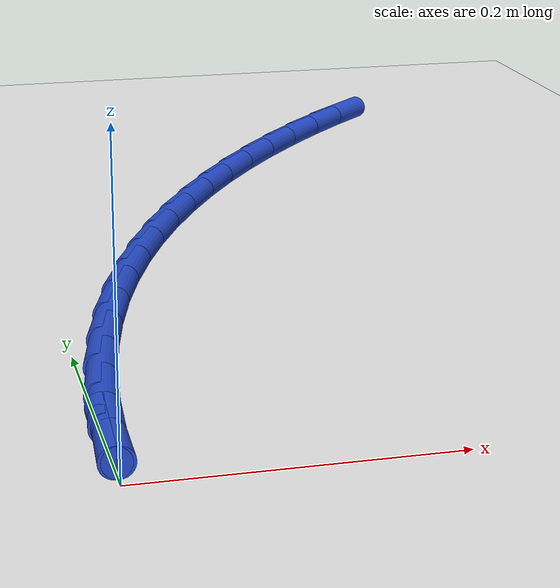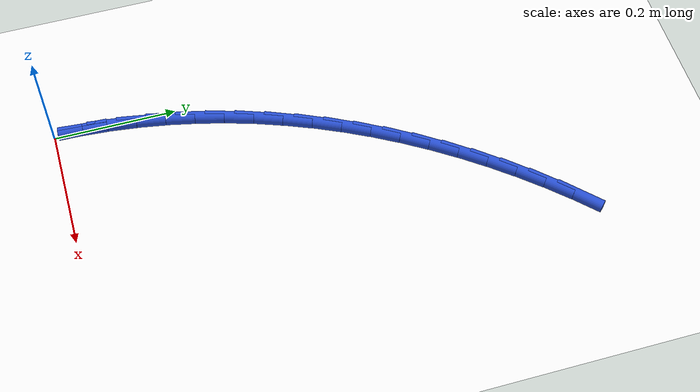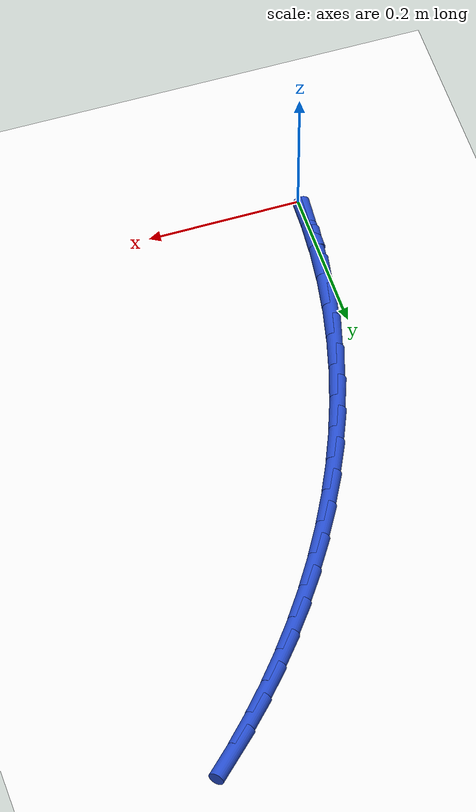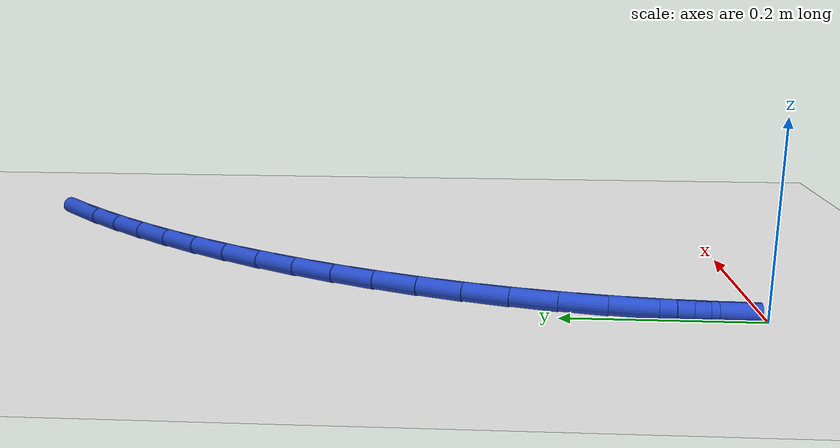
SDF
<sdf version="1.6">
 <world name="default">
  <model name="ground_plane">
   <static>1</static>
   <link name="link">
    <collision name="collision">
     <geometry><plane><normal>0 0 1</normal><size>100 100</size></plane></geometry>
     <surface><friction><ode><mu>100</mu><mu2>50</mu2></ode></friction></surface>
    </collision>
    <visual name="visual">
     <cast_shadows>0</cast_shadows>
     <geometry><plane><normal>0 0 1</normal><size>100 100</size></plane></geometry>
     <material>
      <script><uri>file://media/materials/scripts/gazebo.material</uri><name>Gazebo/WhiteGlow</name></script>
     </material>
    </visual>
   </link>
  </model>
  <model name="line">
   <link name="link_1">
    <pose>0.0013647095893725408 0.0475302462803473 0.01 0 1.57 1.4935176895903097</pose>
    <collision name="collision">
     <geometry><cylinder><radius>0.01</radius><length>0.08</length></cylinder></geometry>
    </collision>
    <visual name="visual">
     <material>
      <script><name>Gazebo/Blue</name><uri>file://media/materials/scripts/gazebo.material</uri></script>
     </material>
     <geometry><cylinder><radius>0.01</radius><length>0.08</length></cylinder></geometry>
    </visual>
   </link>
   <link name="link_2">
    <pose>0.0050424344761275395 0.09502591900114518 0.01 0 1.57 1.4459482668344668</pose>
    <collision name="collision">
     <geometry><cylinder><radius>0.01</radius><length>0.08</length></cylinder></geometry>
    </collision>
    <visual name="visual">
     <material>
      <script><name>Gazebo/Blue</name><uri>file://media/materials/scripts/gazebo.material</uri></script>
     </material>
     <geometry><cylinder><radius>0.01</radius><length>0.08</length></cylinder></geometry>
    </visual>
   </link>
   <link name="link_3">
    <pose>0.010987295502399708 0.1423950274382091 0.01 0 1.57 1.3993050739746997</pose>
    <collision name="collision">
     <geometry><cylinder><radius>0.01</radius><length>0.08</length></cylinder></geometry>
    </collision>
    <visual name="visual">
     <material>
      <script><name>Gazebo/Blue</name><uri>file://media/materials/scripts/gazebo.material</uri></script>
     </material>
     <geometry><cylinder><radius>0.01</radius><length>0.08</length></cylinder></geometry>
    </visual>
   </link>
   <link name="link_4">
    <pose>0.01915341351032378 0.18954558086735446 0.01 0 1.57 1.353498917485196</pose>
    <collision name="collision">
     <geometry><cylinder><radius>0.01</radius><length>0.08</length></cylinder></geometry>
    </collision>
    <visual name="visual">
     <material>
      <script><name>Gazebo/Blue</name><uri>file://media/materials/scripts/gazebo.material</uri></script>
     </material>
     <geometry><cylinder><radius>0.01</radius><length>0.08</length></cylinder></geometry>
    </visual>
   </link>
   <link name="link_5">
    <pose>0.029494909342034456 0.23638558856439665 0.01 0 1.57 1.3084322120844911</pose>
    <collision name="collision">
     <geometry><cylinder><radius>0.01</radius><length>0.08</length></cylinder></geometry>
    </collision>
    <visual name="visual">
     <material>
      <script><name>Gazebo/Blue</name><uri>file://media/materials/scripts/gazebo.material</uri></script>
     </material>
     <geometry><cylinder><radius>0.01</radius><length>0.08</length></cylinder></geometry>
    </visual>
   </link>
   <link name="link_6">
    <pose>0.041965903839666495 0.28282305980515127 0.01 0 1.57 1.2640010197266225</pose>
    <collision name="collision">
     <geometry><cylinder><radius>0.01</radius><length>0.08</length></cylinder></geometry>
    </collision>
    <visual name="visual">
     <material>
      <script><name>Gazebo/Blue</name><uri>file://media/materials/scripts/gazebo.material</uri></script>
     </material>
     <geometry><cylinder><radius>0.01</radius><length>0.08</length></cylinder></geometry>
    </visual>
   </link>
   <link name="link_7">
    <pose>0.056520517845354605 0.3287660038654336 0.01 0 1.57 1.2200967701889742</pose>
    <collision name="collision">
     <geometry><cylinder><radius>0.01</radius><length>0.08</length></cylinder></geometry>
    </collision>
    <visual name="visual">
     <material>
      <script><name>Gazebo/Blue</name><uri>file://media/materials/scripts/gazebo.material</uri></script>
     </material>
     <geometry><cylinder><radius>0.01</radius><length>0.08</length></cylinder></geometry>
    </visual>
   </link>
   <link name="link_8">
    <pose>0.0731128722012335 0.37412243002105905 0.01 0 1.57 1.1766103750817722</pose>
    <collision name="collision">
     <geometry><cylinder><radius>0.01</radius><length>0.08</length></cylinder></geometry>
    </collision>
    <visual name="visual">
     <material>
      <script><name>Gazebo/Blue</name><uri>file://media/materials/scripts/gazebo.material</uri></script>
     </material>
     <geometry><cylinder><radius>0.01</radius><length>0.08</length></cylinder></geometry>
    </visual>
   </link>
   <link name="link_9">
    <pose>0.09169698191835757 0.41880043032889613 0.01 0 1.57 1.1336944703138312</pose>
    <collision name="collision">
     <geometry><cylinder><radius>0.01</radius><length>0.08</length></cylinder></geometry>
    </collision>
    <visual name="visual">
     <material>
      <script><name>Gazebo/Blue</name><uri>file://media/materials/scripts/gazebo.material</uri></script>
     </material>
     <geometry><cylinder><radius>0.01</radius><length>0.08</length></cylinder></geometry>
    </visual>
   </link>
   <link name="link_10">
    <pose>0.1122164274541733 0.4627162587518477 0.01 0 1.57 1.091731364844603</pose>
    <collision name="collision">
     <geometry><cylinder><radius>0.01</radius><length>0.08</length></cylinder></geometry>
    </collision>
    <visual name="visual">
     <material>
      <script><name>Gazebo/Blue</name><uri>file://media/materials/scripts/gazebo.material</uri></script>
     </material>
     <geometry><cylinder><radius>0.01</radius><length>0.08</length></cylinder></geometry>
    </visual>
   </link>
   <link name="link_11">
    <pose>0.1345956882542499 0.5058011100610174 0.01 0 1.57 1.0506706397227428</pose>
    <collision name="collision">
     <geometry><cylinder><radius>0.01</radius><length>0.08</length></cylinder></geometry>
    </collision>
    <visual name="visual">
     <material>
      <script><name>Gazebo/Blue</name><uri>file://media/materials/scripts/gazebo.material</uri></script>
     </material>
     <geometry><cylinder><radius>0.01</radius><length>0.08</length></cylinder></geometry>
    </visual>
   </link>
   <link name="link_12">
    <pose>0.1587572034086069 0.5479877749932688 0.01 0 1.57 1.0104036781939865</pose>
    <collision name="collision">
     <geometry><cylinder><radius>0.01</radius><length>0.08</length></cylinder></geometry>
    </collision>
    <visual name="visual">
     <material>
      <script><name>Gazebo/Blue</name><uri>file://media/materials/scripts/gazebo.material</uri></script>
     </material>
     <geometry><cylinder><radius>0.01</radius><length>0.08</length></cylinder></geometry>
    </visual>
   </link>
   <link name="link_13">
    <pose>0.18462341200726387 0.5892090442854648 0.01 0 1.57 0.970816725050132</pose>
    <collision name="collision">
     <geometry><cylinder><radius>0.01</radius><length>0.08</length></cylinder></geometry>
    </collision>
    <visual name="visual">
     <material>
      <script><name>Gazebo/Blue</name><uri>file://media/materials/scripts/gazebo.material</uri></script>
     </material>
     <geometry><cylinder><radius>0.01</radius><length>0.08</length></cylinder></geometry>
    </visual>
   </link>
   <link name="link_14">
    <pose>0.21211675314024034 0.6293977086744686 0.01 0 1.57 0.93179198835614</pose>
    <collision name="collision">
     <geometry><cylinder><radius>0.01</radius><length>0.08</length></cylinder></geometry>
    </collision>
    <visual name="visual">
     <material>
      <script><name>Gazebo/Blue</name><uri>file://media/materials/scripts/gazebo.material</uri></script>
     </material>
     <geometry><cylinder><radius>0.01</radius><length>0.08</length></cylinder></geometry>
    </visual>
   </link>
   <link name="link_15">
    <pose>0.24115966589755575 0.6684865588971433 0.01 0 1.57 0.8932084274522099</pose>
    <collision name="collision">
     <geometry><cylinder><radius>0.01</radius><length>0.08</length></cylinder></geometry>
    </collision>
    <visual name="visual">
     <material>
      <script><name>Gazebo/Blue</name><uri>file://media/materials/scripts/gazebo.material</uri></script>
     </material>
     <geometry><cylinder><radius>0.01</radius><length>0.08</length></cylinder></geometry>
    </visual>
   </link>
   <link name="link_16">
    <pose>0.2716745893692297 0.7064083856903522 0.01 0 1.57 0.8549422761940746</pose>
    <collision name="collision">
     <geometry><cylinder><radius>0.01</radius><length>0.08</length></cylinder></geometry>
    </collision>
    <visual name="visual">
     <material>
      <script><name>Gazebo/Blue</name><uri>file://media/materials/scripts/gazebo.material</uri></script>
     </material>
     <geometry><cylinder><radius>0.01</radius><length>0.08</length></cylinder></geometry>
    </visual>
   </link>
   <link name="link_17">
    <pose>0.3035839626452817 0.7430959797909586 0.01 0 1.57 0.8168673510389605</pose>
    <collision name="collision">
     <geometry><cylinder><radius>0.01</radius><length>0.08</length></cylinder></geometry>
    </collision>
    <visual name="visual">
     <material>
      <script><name>Gazebo/Blue</name><uri>file://media/materials/scripts/gazebo.material</uri></script>
     </material>
     <geometry><cylinder><radius>0.01</radius><length>0.08</length></cylinder></geometry>
    </visual>
   </link>
   <link name="link_18">
    <pose>0.3368102248157314 0.7784821319358257 0.01 0 1.57 0.7788551930454439</pose>
    <collision name="collision">
     <geometry><cylinder><radius>0.01</radius><length>0.08</length></cylinder></geometry>
    </collision>
    <visual name="visual">
     <material>
      <script><name>Gazebo/Blue</name><uri>file://media/materials/scripts/gazebo.material</uri></script>
     </material>
     <geometry><cylinder><radius>0.01</radius><length>0.08</length></cylinder></geometry>
    </visual>
   </link>
   <link name="link_151">
    <pose>0.0013749383773131296 0.04753682450685882 0.01 0 1.57 1.5418807404093628</pose>
    <collision name="collision">
     <geometry><cylinder><radius>0.01</radius><length>0.08</length></cylinder></geometry>
    </collision>
    <visual name="visual">
     <material>
      <script><name>Gazebo/Blue</name><uri>file://media/materials/scripts/gazebo.material</uri></script>
     </material>
     <geometry><cylinder><radius>0.01</radius><length>0.08</length></cylinder></geometry>
    </visual>
   </link>
  </model>
 </world>
</sdf>
